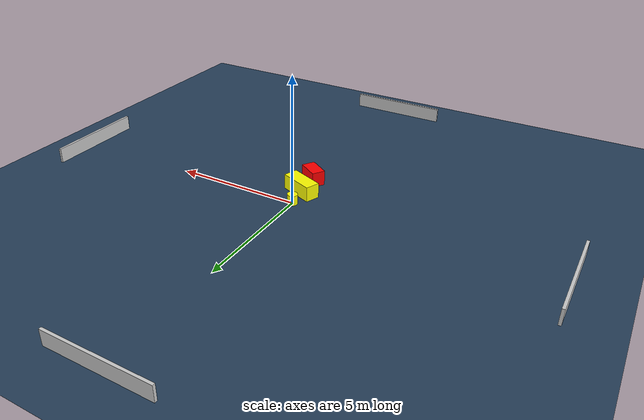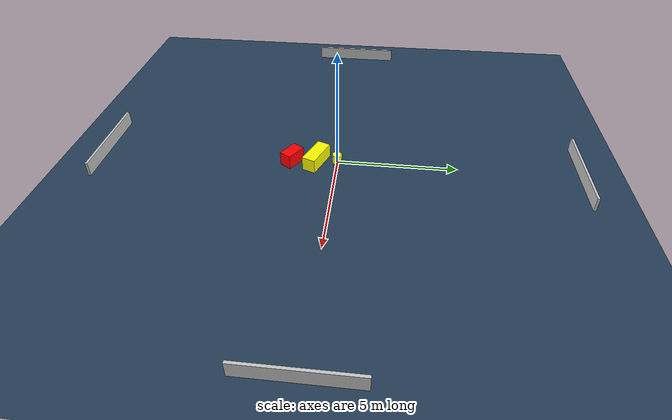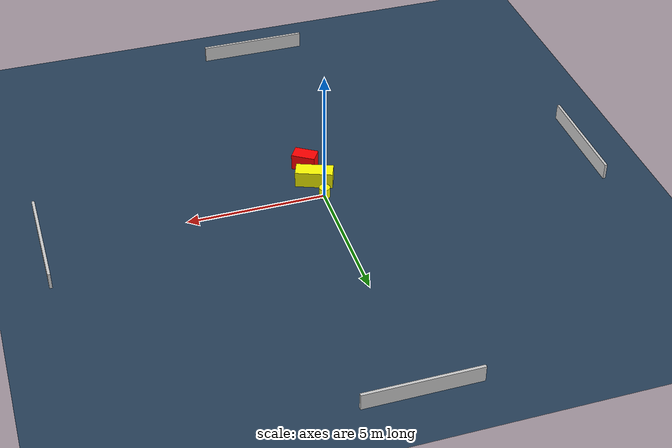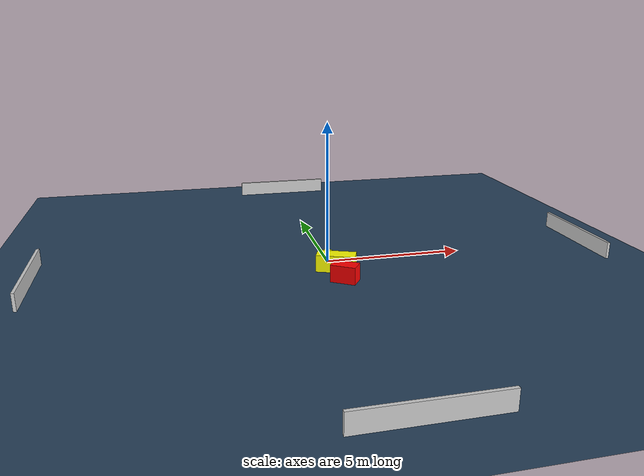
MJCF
<?xml version="1.0" ?>
<mujoco model="generated_environment">
  <option timestep="0.01" integrator="RK4" cone="elliptic"/>
  <default>
    <geom density="1"/>
  </default>
  <asset>
    <texture builtin="gradient" height="3072" name="skybox" rgb1="0.3 0.5 0.7" rgb2="0 0 0" type="skybox" width="512"/>
    <texture builtin="checker" height="300" name="groundplane" rgb1="0.2 0.3 0.4" rgb2="0.1 0.2 0.3" type="2d" width="300"/>
    <material name="groundplane" reflectance="0.2" texrepeat="5 5" texture="groundplane"/>
  </asset>
  <worldbody>
    <light dir="0 0 -1" directional="true" pos="0 0 1.5"/>
    <geom condim="3" friction="0.5 0.005 0.001" material="groundplane" name="floor" pos="0 0 0" size="0 0 0.05" type="plane"/>
    <body name="walls">
      <geom name="wall_1" condim="4" pos="-10.0 0.0 0.3" rgba="0.800000011920929 0.800000011920929 0.800000011920929 1.0" size="0.05 2.0 0.3" type="box"/>
      <geom name="wall_2" condim="4" pos="10.0 0.0 0.3" rgba="0.800000011920929 0.800000011920929 0.800000011920929 1.0" size="0.05 2.0 0.3" type="box"/>
      <geom name="wall_3" condim="4" pos="0.0 -10.0 0.3" rgba="0.800000011920929 0.800000011920929 0.800000011920929 1.0" size="2.0 0.05 0.3" type="box"/>
      <geom name="wall_4" condim="4" pos="0.0 10.0 0.3" rgba="0.800000011920929 0.800000011920929 0.800000011920929 1.0" size="2.0 0.05 0.3" type="box"/>
    </body>
    <body name="robot">
      <joint name="joint_x" type="slide" pos="0 0 0" axis="1 0 0"/>
      <joint name="joint_y" type="slide" pos="0 0 0" axis="0 1 0"/>
      <geom name="robot" type="cylinder" pos="0.0 0.0 0.2" size="0.2 0.2 0.0" mass="5.0" friction="1.0 0.005 0.0001" condim="4" rgba="1.0 1.0 0.0 1.0"/>
    </body>
    <body name="obstacle_1_movable">
      <geom name="obstacle_1_movable" condim="4" pos="0.11713293819339161 -0.8658323171686406 0.3" euler="0 0 68.45567477799594" friction="0.0 0.005 0.001" rgba="1.0 1.0 0.0 1.0" size="0.2849123342713685 0.6755259006258747 0.3" type="box" mass="0.1"/>
      <joint type="free"/>
    </body>
    <body name="obstacle_2_static">
      <geom name="obstacle_2_static" condim="4" pos="0.16630440324836926 -1.8899253099010769 0.3" euler="0 0 56.846298025204824" friction="0.0 0.005 0.001" rgba="1.0 0.0 0.0 1.0" size="0.26516495245085936 0.4344591304944406 0.3" type="box"/>
    </body>
  </worldbody>
  <actuator>
    <motor name="actuator_x" joint="joint_x" gear="1" ctrlrange="-1 1"/>
    <motor name="actuator_y" joint="joint_y" gear="1" ctrlrange="-1 1"/>
  </actuator>
</mujoco>
